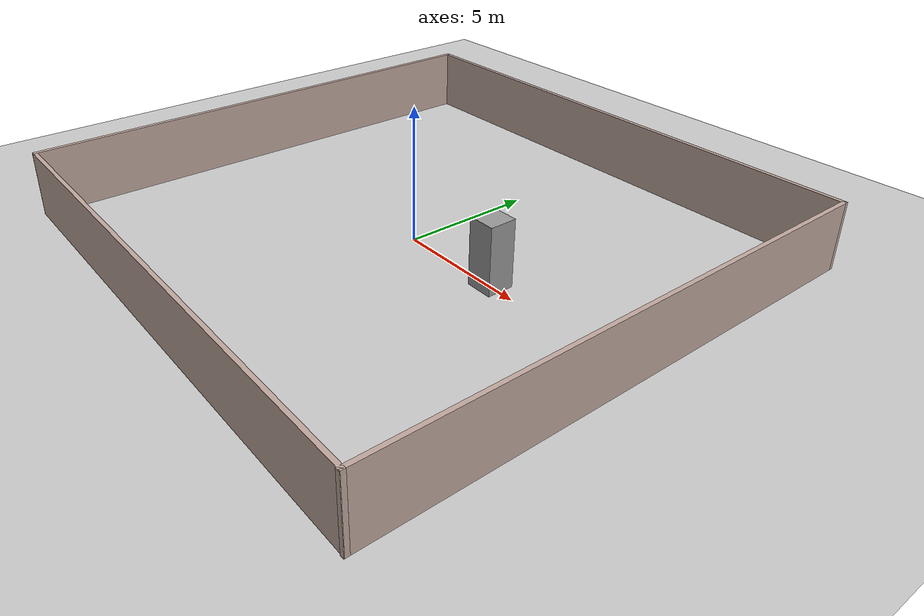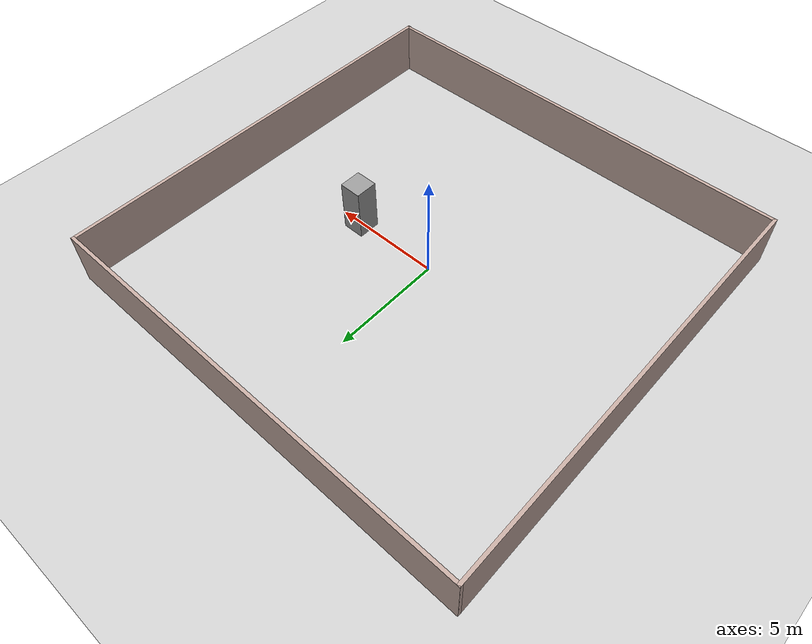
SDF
<sdf version="1.6">
 <world name="default">
  <plugin name="ros_interface_plugin" filename="librotors_gazebo_ros_interface_plugin.so"/>
  <spherical_coordinates>
   <surface_model>EARTH_WGS84</surface_model>
   <latitude_deg>47.3667</latitude_deg>
   <longitude_deg>8.5500</longitude_deg>
   <elevation>500.0</elevation>
   <heading_deg>0</heading_deg>
  </spherical_coordinates>
  <physics type="ode">
   <ode>
    <solver><type>quick</type><iters>1000</iters><sor>1.3</sor></solver>
    <constraints>
     <cfm>0</cfm>
     <erp>0.2</erp>
     <contact_max_correcting_vel>100</contact_max_correcting_vel>
     <contact_surface_layer>0.001</contact_surface_layer>
    </constraints>
   </ode>
   <max_step_size>0.01</max_step_size>
   <real_time_factor>1</real_time_factor>
   <real_time_update_rate>100</real_time_update_rate>
   <gravity>0 0 -9.8</gravity>
  </physics>
  <light name="sun" type="directional">
   <pose>0 0 10 0 -0 0</pose>
   <diffuse>0.8 0.8 0.8 1</diffuse>
   <specular>0.2 0.2 0.2 1</specular>
   <attenuation>
    <range>1000</range>
    <constant>0.9</constant>
    <linear>0.01</linear>
    <quadratic>0.001</quadratic>
   </attenuation>
   <direction>-0.5 0.1 -0.9</direction>
  </light>
  <model name="ground_plane">
   <static>1</static>
   <link name="link">
    <collision name="collision">
     <geometry><plane><normal>0 0 1</normal><size>100 100</size></plane></geometry>
     <surface>
      <contact><collide_bitmask>65535</collide_bitmask></contact>
      <friction><ode><mu>100</mu><mu2>50</mu2></ode></friction>
     </surface>
    </collision>
    <visual name="visual">
     <cast_shadows>0</cast_shadows>
     <geometry><plane><normal>0 0 1</normal><size>100 100</size></plane></geometry>
     <material>
      <script><uri>file://media/materials/scripts/gazebo.material</uri><name>Gazebo/Grey</name></script>
     </material>
    </visual>
   </link>
  </model>
  <gravity>0 0 -9.8</gravity>
  <magnetic_field>6e-06 2.3e-05 -4.2e-05</magnetic_field>
  <atmosphere type="adiabatic"/>
  <physics name="default_physics" default="0" type="ode">
   <max_step_size>0.001</max_step_size>
   <real_time_factor>1</real_time_factor>
   <real_time_update_rate>1000</real_time_update_rate>
  </physics>
  <scene><ambient>0.4 0.4 0.4 1</ambient><background>0.7 0.7 0.7 1</background><shadows>1</shadows></scene>
  <audio><device>default</device></audio>
  <spherical_coordinates>
   <surface_model>EARTH_WGS84</surface_model>
   <latitude_deg>0</latitude_deg>
   <longitude_deg>0</longitude_deg>
   <elevation>0</elevation>
   <heading_deg>0</heading_deg>
  </spherical_coordinates>
  <model name="Room1">
   <pose>0.052821 0.021612 0 0 -0 0</pose>
   <link name="Wall_5">
    <collision name="Wall_5_Collision">
     <geometry><box><size>20.2375 0.15 2.5</size></box></geometry>
     <pose>0 0 1.25 0 -0 0</pose>
    </collision>
    <visual name="Wall_5_Visual">
     <pose>0 0 1.25 0 -0 0</pose>
     <geometry><box><size>20.2375 0.15 2.5</size></box></geometry>
     <material>
      <script><uri>file://media/materials/scripts/gazebo.material</uri><name>Gazebo/Grey</name></script>
      <ambient>0.760784 0.662745 0.627451 1</ambient>
     </material>
     <meta><layer>0</layer></meta>
    </visual>
    <pose>0.00159 9.72367 0 0 -0 -0.001065</pose>
   </link>
   <link name="Wall_6">
    <collision name="Wall_6_Collision">
     <geometry><box><size>19.5759 0.15 2.5</size></box></geometry>
     <pose>0 0 1.25 0 -0 0</pose>
    </collision>
    <visual name="Wall_6_Visual">
     <pose>0 0 1.25 0 -0 0</pose>
     <geometry><box><size>19.5759 0.15 2.5</size></box></geometry>
     <material>
      <script><uri>file://media/materials/scripts/gazebo.material</uri><name>Gazebo/Grey</name></script>
      <ambient>0.760784 0.662745 0.627451 1</ambient>
     </material>
     <meta><layer>0</layer></meta>
    </visual>
    <pose>10.0461 -0.021509 0 0 -0 -1.57071</pose>
   </link>
   <link name="Wall_7">
    <collision name="Wall_7_Collision">
     <geometry><box><size>20.2388 0.15 2.5</size></box></geometry>
     <pose>0 0 1.25 0 -0 0</pose>
    </collision>
    <visual name="Wall_7_Visual">
     <pose>0 0 1.25 0 -0 0</pose>
     <geometry><box><size>20.2388 0.15 2.5</size></box></geometry>
     <material>
      <script><uri>file://media/materials/scripts/gazebo.material</uri><name>Gazebo/Grey</name></script>
      <ambient>0.760784 0.662745 0.627451 1</ambient>
     </material>
     <meta><layer>0</layer></meta>
    </visual>
    <pose>0.002679 -9.71325 0 0 -0 -3.14155</pose>
   </link>
   <link name="Wall_8">
    <collision name="Wall_8_Collision">
     <geometry><box><size>19.5906 0.15 2.5</size></box></geometry>
     <pose>0 0 1.25 0 -0 0</pose>
    </collision>
    <visual name="Wall_8_Visual">
     <pose>0 0 1.25 0 -0 0</pose>
     <geometry><box><size>19.5906 0.15 2.5</size></box></geometry>
     <material>
      <script><uri>file://media/materials/scripts/gazebo.material</uri><name>Gazebo/Grey</name></script>
      <ambient>0.760784 0.662745 0.627451 1</ambient>
     </material>
     <meta><layer>0</layer></meta>
    </visual>
    <pose>-10.0446 0.006648 0 0 -0 1.57054</pose>
   </link>
   <static>1</static>
  </model>
  <model name="unit_box">
   <pose>3.92177 0.058062 1.24115 -2e-06 2e-06 -0.001195</pose>
   <link name="link">
    <inertial>
     <mass>1</mass>
     <inertia>
      <ixx>0.166667</ixx>
      <ixy>0</ixy>
      <ixz>0</ixz>
      <iyy>0.166667</iyy>
      <iyz>0</iyz>
      <izz>0.166667</izz>
     </inertia>
    </inertial>
    <collision name="collision"><geometry><box><size>1 1 2.48231</size></box></geometry></collision>
    <visual name="visual">
     <geometry><box><size>1 1 2.48231</size></box></geometry>
     <material>
      <script><name>Gazebo/Grey</name><uri>file://media/materials/scripts/gazebo.material</uri></script>
     </material>
    </visual>
   </link>
  </model>
 </world>
</sdf>
